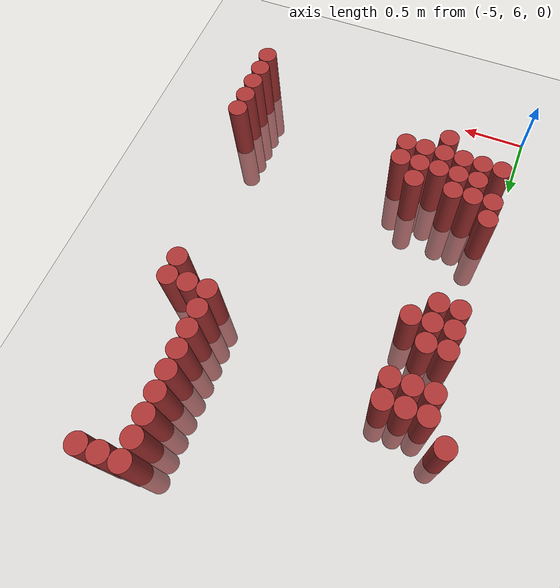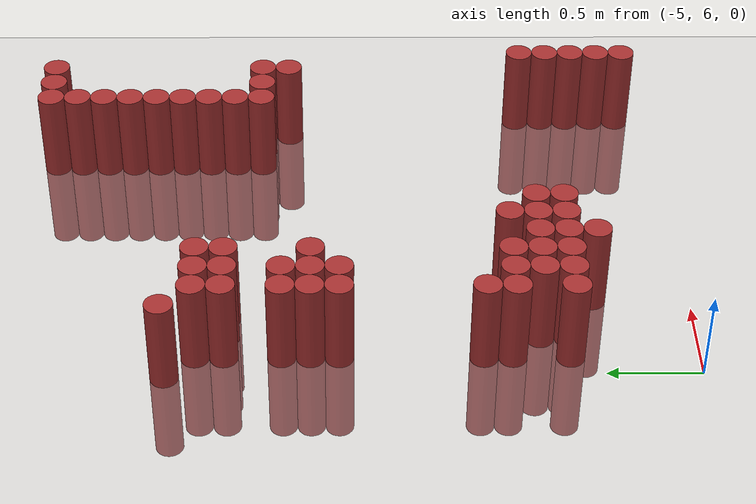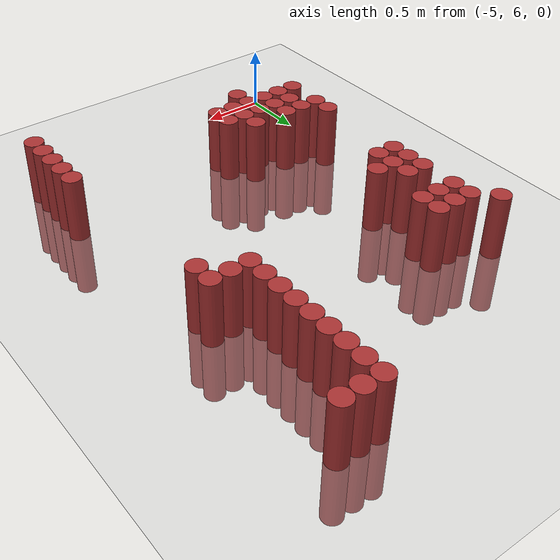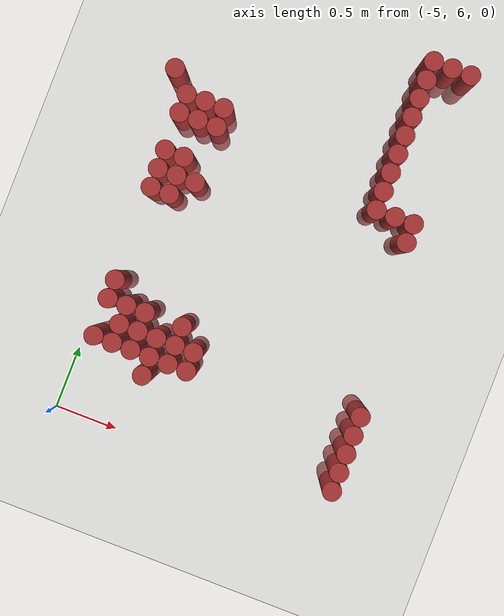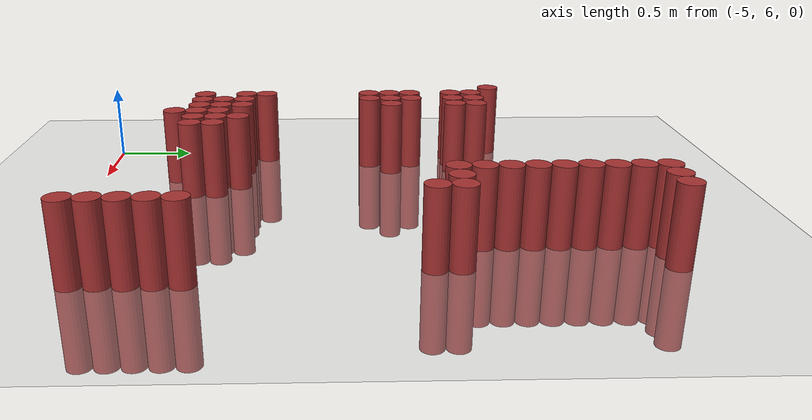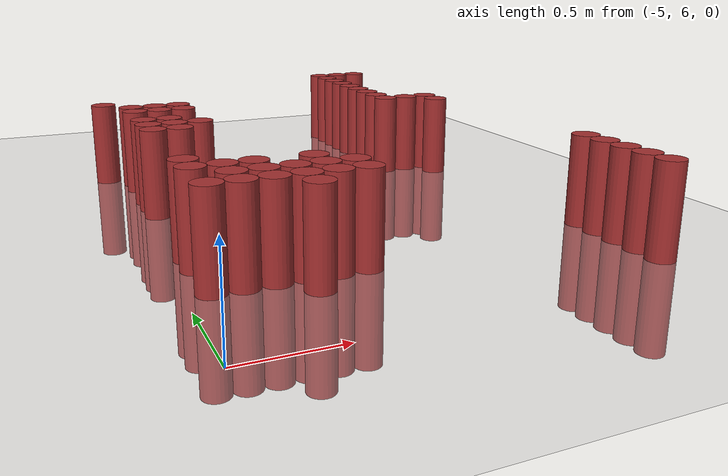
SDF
<sdf version="1.6">
 <world name="default">
  <model name="ground_plane">
   <static>1</static>
   <link name="link">
    <collision name="collision">
     <geometry><plane><normal>0 0 1</normal><size>100 100</size></plane></geometry>
     <surface><friction><ode><mu>100</mu><mu2>50</mu2></ode></friction></surface>
    </collision>
    <visual name="visual">
     <cast_shadows>0</cast_shadows>
     <geometry><plane><normal>0 0 1</normal><size>100 100</size></plane></geometry>
     <material>
      <script><uri>file://media/materials/scripts/gazebo.material</uri><name>Gazebo/Grey</name></script>
     </material>
    </visual>
   </link>
  </model>
  <model name="unit_cylinder_257">
   <static>1</static>
   <pose>-5.025000 8.775000 0.000000 0.000000 0.000000 0.000000</pose>
   <link name="link">
    <inertial>
     <mass>1</mass>
     <inertia><ixx>0.145833</ixx><ixy>0</ixy><ixz>0</ixz><iyy>0.145833</iyy><iyz>0</iyz><izz>0.125</izz></inertia>
    </inertial>
    <collision name="collision">
     <geometry><cylinder><radius>0.075000</radius><length>1</length></cylinder></geometry>
    </collision>
    <visual name="visual">
     <geometry><cylinder><radius>0.075000</radius><length>1</length></cylinder></geometry>
     <material>
      <ambient>0.648000 0.192000 0.192000 1</ambient>
      <diffuse>0.648000 0.192000 0.192000 1</diffuse>
     </material>
     <material>
      <script><name>Gazebo/Grey</name><uri>file://media/materials/scripts/gazebo.material</uri></script>
     </material>
    </visual>
   </link>
  </model>
  <model name="unit_cylinder_261">
   <static>1</static>
   <pose>-4.875000 6.675000 0.000000 0.000000 0.000000 0.000000</pose>
   <link name="link">
    <inertial>
     <mass>1</mass>
     <inertia><ixx>0.145833</ixx><ixy>0</ixy><ixz>0</ixz><iyy>0.145833</iyy><iyz>0</iyz><izz>0.125</izz></inertia>
    </inertial>
    <collision name="collision">
     <geometry><cylinder><radius>0.075000</radius><length>1</length></cylinder></geometry>
    </collision>
    <visual name="visual">
     <geometry><cylinder><radius>0.075000</radius><length>1</length></cylinder></geometry>
     <material>
      <ambient>0.648000 0.192000 0.192000 1</ambient>
      <diffuse>0.648000 0.192000 0.192000 1</diffuse>
     </material>
     <material>
      <script><name>Gazebo/Grey</name><uri>file://media/materials/scripts/gazebo.material</uri></script>
     </material>
    </visual>
   </link>
  </model>
  <model name="unit_cylinder_262">
   <static>1</static>
   <pose>-4.875000 6.975000 0.000000 0.000000 0.000000 0.000000</pose>
   <link name="link">
    <inertial>
     <mass>1</mass>
     <inertia><ixx>0.145833</ixx><ixy>0</ixy><ixz>0</ixz><iyy>0.145833</iyy><iyz>0</iyz><izz>0.125</izz></inertia>
    </inertial>
    <collision name="collision">
     <geometry><cylinder><radius>0.075000</radius><length>1</length></cylinder></geometry>
    </collision>
    <visual name="visual">
     <geometry><cylinder><radius>0.075000</radius><length>1</length></cylinder></geometry>
     <material>
      <ambient>0.648000 0.192000 0.192000 1</ambient>
      <diffuse>0.648000 0.192000 0.192000 1</diffuse>
     </material>
     <material>
      <script><name>Gazebo/Grey</name><uri>file://media/materials/scripts/gazebo.material</uri></script>
     </material>
    </visual>
   </link>
  </model>
  <model name="unit_cylinder_263">
   <static>1</static>
   <pose>-4.875000 7.125000 0.000000 0.000000 0.000000 0.000000</pose>
   <link name="link">
    <inertial>
     <mass>1</mass>
     <inertia><ixx>0.145833</ixx><ixy>0</ixy><ixz>0</ixz><iyy>0.145833</iyy><iyz>0</iyz><izz>0.125</izz></inertia>
    </inertial>
    <collision name="collision">
     <geometry><cylinder><radius>0.075000</radius><length>1</length></cylinder></geometry>
    </collision>
    <visual name="visual">
     <geometry><cylinder><radius>0.075000</radius><length>1</length></cylinder></geometry>
     <material>
      <ambient>0.648000 0.192000 0.192000 1</ambient>
      <diffuse>0.648000 0.192000 0.192000 1</diffuse>
     </material>
     <material>
      <script><name>Gazebo/Grey</name><uri>file://media/materials/scripts/gazebo.material</uri></script>
     </material>
    </visual>
   </link>
  </model>
  <model name="unit_cylinder_264">
   <static>1</static>
   <pose>-4.875000 7.875000 0.000000 0.000000 0.000000 0.000000</pose>
   <link name="link">
    <inertial>
     <mass>1</mass>
     <inertia><ixx>0.145833</ixx><ixy>0</ixy><ixz>0</ixz><iyy>0.145833</iyy><iyz>0</iyz><izz>0.125</izz></inertia>
    </inertial>
    <collision name="collision">
     <geometry><cylinder><radius>0.075000</radius><length>1</length></cylinder></geometry>
    </collision>
    <visual name="visual">
     <geometry><cylinder><radius>0.075000</radius><length>1</length></cylinder></geometry>
     <material>
      <ambient>0.648000 0.192000 0.192000 1</ambient>
      <diffuse>0.648000 0.192000 0.192000 1</diffuse>
     </material>
     <material>
      <script><name>Gazebo/Grey</name><uri>file://media/materials/scripts/gazebo.material</uri></script>
     </material>
    </visual>
   </link>
  </model>
  <model name="unit_cylinder_265">
   <static>1</static>
   <pose>-4.875000 8.025000 0.000000 0.000000 0.000000 0.000000</pose>
   <link name="link">
    <inertial>
     <mass>1</mass>
     <inertia><ixx>0.145833</ixx><ixy>0</ixy><ixz>0</ixz><iyy>0.145833</iyy><iyz>0</iyz><izz>0.125</izz></inertia>
    </inertial>
    <collision name="collision">
     <geometry><cylinder><radius>0.075000</radius><length>1</length></cylinder></geometry>
    </collision>
    <visual name="visual">
     <geometry><cylinder><radius>0.075000</radius><length>1</length></cylinder></geometry>
     <material>
      <ambient>0.648000 0.192000 0.192000 1</ambient>
      <diffuse>0.648000 0.192000 0.192000 1</diffuse>
     </material>
     <material>
      <script><name>Gazebo/Grey</name><uri>file://media/materials/scripts/gazebo.material</uri></script>
     </material>
    </visual>
   </link>
  </model>
  <model name="unit_cylinder_266">
   <static>1</static>
   <pose>-4.875000 8.175000 0.000000 0.000000 0.000000 0.000000</pose>
   <link name="link">
    <inertial>
     <mass>1</mass>
     <inertia><ixx>0.145833</ixx><ixy>0</ixy><ixz>0</ixz><iyy>0.145833</iyy><iyz>0</iyz><izz>0.125</izz></inertia>
    </inertial>
    <collision name="collision">
     <geometry><cylinder><radius>0.075000</radius><length>1</length></cylinder></geometry>
    </collision>
    <visual name="visual">
     <geometry><cylinder><radius>0.075000</radius><length>1</length></cylinder></geometry>
     <material>
      <ambient>0.648000 0.192000 0.192000 1</ambient>
      <diffuse>0.648000 0.192000 0.192000 1</diffuse>
     </material>
     <material>
      <script><name>Gazebo/Grey</name><uri>file://media/materials/scripts/gazebo.material</uri></script>
     </material>
    </visual>
   </link>
  </model>
  <model name="unit_cylinder_267">
   <static>1</static>
   <pose>-4.875000 8.475000 0.000000 0.000000 0.000000 0.000000</pose>
   <link name="link">
    <inertial>
     <mass>1</mass>
     <inertia><ixx>0.145833</ixx><ixy>0</ixy><ixz>0</ixz><iyy>0.145833</iyy><iyz>0</iyz><izz>0.125</izz></inertia>
    </inertial>
    <collision name="collision">
     <geometry><cylinder><radius>0.075000</radius><length>1</length></cylinder></geometry>
    </collision>
    <visual name="visual">
     <geometry><cylinder><radius>0.075000</radius><length>1</length></cylinder></geometry>
     <material>
      <ambient>0.648000 0.192000 0.192000 1</ambient>
      <diffuse>0.648000 0.192000 0.192000 1</diffuse>
     </material>
     <material>
      <script><name>Gazebo/Grey</name><uri>file://media/materials/scripts/gazebo.material</uri></script>
     </material>
    </visual>
   </link>
  </model>
  <model name="unit_cylinder_268">
   <static>1</static>
   <pose>-4.875000 8.625000 0.000000 0.000000 0.000000 0.000000</pose>
   <link name="link">
    <inertial>
     <mass>1</mass>
     <inertia><ixx>0.145833</ixx><ixy>0</ixy><ixz>0</ixz><iyy>0.145833</iyy><iyz>0</iyz><izz>0.125</izz></inertia>
    </inertial>
    <collision name="collision">
     <geometry><cylinder><radius>0.075000</radius><length>1</length></cylinder></geometry>
    </collision>
    <visual name="visual">
     <geometry><cylinder><radius>0.075000</radius><length>1</length></cylinder></geometry>
     <material>
      <ambient>0.648000 0.192000 0.192000 1</ambient>
      <diffuse>0.648000 0.192000 0.192000 1</diffuse>
     </material>
     <material>
      <script><name>Gazebo/Grey</name><uri>file://media/materials/scripts/gazebo.material</uri></script>
     </material>
    </visual>
   </link>
  </model>
  <model name="unit_cylinder_269">
   <static>1</static>
   <pose>-4.725000 6.675000 0.000000 0.000000 0.000000 0.000000</pose>
   <link name="link">
    <inertial>
     <mass>1</mass>
     <inertia><ixx>0.145833</ixx><ixy>0</ixy><ixz>0</ixz><iyy>0.145833</iyy><iyz>0</iyz><izz>0.125</izz></inertia>
    </inertial>
    <collision name="collision">
     <geometry><cylinder><radius>0.075000</radius><length>1</length></cylinder></geometry>
    </collision>
    <visual name="visual">
     <geometry><cylinder><radius>0.075000</radius><length>1</length></cylinder></geometry>
     <material>
      <ambient>0.648000 0.192000 0.192000 1</ambient>
      <diffuse>0.648000 0.192000 0.192000 1</diffuse>
     </material>
     <material>
      <script><name>Gazebo/Grey</name><uri>file://media/materials/scripts/gazebo.material</uri></script>
     </material>
    </visual>
   </link>
  </model>
  <model name="unit_cylinder_270">
   <static>1</static>
   <pose>-4.725000 6.825000 0.000000 0.000000 0.000000 0.000000</pose>
   <link name="link">
    <inertial>
     <mass>1</mass>
     <inertia><ixx>0.145833</ixx><ixy>0</ixy><ixz>0</ixz><iyy>0.145833</iyy><iyz>0</iyz><izz>0.125</izz></inertia>
    </inertial>
    <collision name="collision">
     <geometry><cylinder><radius>0.075000</radius><length>1</length></cylinder></geometry>
    </collision>
    <visual name="visual">
     <geometry><cylinder><radius>0.075000</radius><length>1</length></cylinder></geometry>
     <material>
      <ambient>0.648000 0.192000 0.192000 1</ambient>
      <diffuse>0.648000 0.192000 0.192000 1</diffuse>
     </material>
     <material>
      <script><name>Gazebo/Grey</name><uri>file://media/materials/scripts/gazebo.material</uri></script>
     </material>
    </visual>
   </link>
  </model>
  <model name="unit_cylinder_271">
   <static>1</static>
   <pose>-4.725000 6.975000 0.000000 0.000000 0.000000 0.000000</pose>
   <link name="link">
    <inertial>
     <mass>1</mass>
     <inertia><ixx>0.145833</ixx><ixy>0</ixy><ixz>0</ixz><iyy>0.145833</iyy><iyz>0</iyz><izz>0.125</izz></inertia>
    </inertial>
    <collision name="collision">
     <geometry><cylinder><radius>0.075000</radius><length>1</length></cylinder></geometry>
    </collision>
    <visual name="visual">
     <geometry><cylinder><radius>0.075000</radius><length>1</length></cylinder></geometry>
     <material>
      <ambient>0.648000 0.192000 0.192000 1</ambient>
      <diffuse>0.648000 0.192000 0.192000 1</diffuse>
     </material>
     <material>
      <script><name>Gazebo/Grey</name><uri>file://media/materials/scripts/gazebo.material</uri></script>
     </material>
    </visual>
   </link>
  </model>
  <model name="unit_cylinder_272">
   <static>1</static>
   <pose>-4.725000 7.875000 0.000000 0.000000 0.000000 0.000000</pose>
   <link name="link">
    <inertial>
     <mass>1</mass>
     <inertia><ixx>0.145833</ixx><ixy>0</ixy><ixz>0</ixz><iyy>0.145833</iyy><iyz>0</iyz><izz>0.125</izz></inertia>
    </inertial>
    <collision name="collision">
     <geometry><cylinder><radius>0.075000</radius><length>1</length></cylinder></geometry>
    </collision>
    <visual name="visual">
     <geometry><cylinder><radius>0.075000</radius><length>1</length></cylinder></geometry>
     <material>
      <ambient>0.648000 0.192000 0.192000 1</ambient>
      <diffuse>0.648000 0.192000 0.192000 1</diffuse>
     </material>
     <material>
      <script><name>Gazebo/Grey</name><uri>file://media/materials/scripts/gazebo.material</uri></script>
     </material>
    </visual>
   </link>
  </model>
  <model name="unit_cylinder_273">
   <static>1</static>
   <pose>-4.725000 8.025000 0.000000 0.000000 0.000000 0.000000</pose>
   <link name="link">
    <inertial>
     <mass>1</mass>
     <inertia><ixx>0.145833</ixx><ixy>0</ixy><ixz>0</ixz><iyy>0.145833</iyy><iyz>0</iyz><izz>0.125</izz></inertia>
    </inertial>
    <collision name="collision">
     <geometry><cylinder><radius>0.075000</radius><length>1</length></cylinder></geometry>
    </collision>
    <visual name="visual">
     <geometry><cylinder><radius>0.075000</radius><length>1</length></cylinder></geometry>
     <material>
      <ambient>0.648000 0.192000 0.192000 1</ambient>
      <diffuse>0.648000 0.192000 0.192000 1</diffuse>
     </material>
     <material>
      <script><name>Gazebo/Grey</name><uri>file://media/materials/scripts/gazebo.material</uri></script>
     </material>
    </visual>
   </link>
  </model>
  <model name="unit_cylinder_274">
   <static>1</static>
   <pose>-4.725000 8.175000 0.000000 0.000000 0.000000 0.000000</pose>
   <link name="link">
    <inertial>
     <mass>1</mass>
     <inertia><ixx>0.145833</ixx><ixy>0</ixy><ixz>0</ixz><iyy>0.145833</iyy><iyz>0</iyz><izz>0.125</izz></inertia>
    </inertial>
    <collision name="collision">
     <geometry><cylinder><radius>0.075000</radius><length>1</length></cylinder></geometry>
    </collision>
    <visual name="visual">
     <geometry><cylinder><radius>0.075000</radius><length>1</length></cylinder></geometry>
     <material>
      <ambient>0.648000 0.192000 0.192000 1</ambient>
      <diffuse>0.648000 0.192000 0.192000 1</diffuse>
     </material>
     <material>
      <script><name>Gazebo/Grey</name><uri>file://media/materials/scripts/gazebo.material</uri></script>
     </material>
    </visual>
   </link>
  </model>
  <model name="unit_cylinder_275">
   <static>1</static>
   <pose>-4.725000 8.475000 0.000000 0.000000 0.000000 0.000000</pose>
   <link name="link">
    <inertial>
     <mass>1</mass>
     <inertia><ixx>0.145833</ixx><ixy>0</ixy><ixz>0</ixz><iyy>0.145833</iyy><iyz>0</iyz><izz>0.125</izz></inertia>
    </inertial>
    <collision name="collision">
     <geometry><cylinder><radius>0.075000</radius><length>1</length></cylinder></geometry>
    </collision>
    <visual name="visual">
     <geometry><cylinder><radius>0.075000</radius><length>1</length></cylinder></geometry>
     <material>
      <ambient>0.648000 0.192000 0.192000 1</ambient>
      <diffuse>0.648000 0.192000 0.192000 1</diffuse>
     </material>
     <material>
      <script><name>Gazebo/Grey</name><uri>file://media/materials/scripts/gazebo.material</uri></script>
     </material>
    </visual>
   </link>
  </model>
  <model name="unit_cylinder_276">
   <static>1</static>
   <pose>-4.725000 8.625000 0.000000 0.000000 0.000000 0.000000</pose>
   <link name="link">
    <inertial>
     <mass>1</mass>
     <inertia><ixx>0.145833</ixx><ixy>0</ixy><ixz>0</ixz><iyy>0.145833</iyy><iyz>0</iyz><izz>0.125</izz></inertia>
    </inertial>
    <collision name="collision">
     <geometry><cylinder><radius>0.075000</radius><length>1</length></cylinder></geometry>
    </collision>
    <visual name="visual">
     <geometry><cylinder><radius>0.075000</radius><length>1</length></cylinder></geometry>
     <material>
      <ambient>0.648000 0.192000 0.192000 1</ambient>
      <diffuse>0.648000 0.192000 0.192000 1</diffuse>
     </material>
     <material>
      <script><name>Gazebo/Grey</name><uri>file://media/materials/scripts/gazebo.material</uri></script>
     </material>
    </visual>
   </link>
  </model>
  <model name="unit_cylinder_277">
   <static>1</static>
   <pose>-4.575000 6.675000 0.000000 0.000000 0.000000 0.000000</pose>
   <link name="link">
    <inertial>
     <mass>1</mass>
     <inertia><ixx>0.145833</ixx><ixy>0</ixy><ixz>0</ixz><iyy>0.145833</iyy><iyz>0</iyz><izz>0.125</izz></inertia>
    </inertial>
    <collision name="collision">
     <geometry><cylinder><radius>0.075000</radius><length>1</length></cylinder></geometry>
    </collision>
    <visual name="visual">
     <geometry><cylinder><radius>0.075000</radius><length>1</length></cylinder></geometry>
     <material>
      <ambient>0.648000 0.192000 0.192000 1</ambient>
      <diffuse>0.648000 0.192000 0.192000 1</diffuse>
     </material>
     <material>
      <script><name>Gazebo/Grey</name><uri>file://media/materials/scripts/gazebo.material</uri></script>
     </material>
    </visual>
   </link>
  </model>
  <model name="unit_cylinder_278">
   <static>1</static>
   <pose>-4.575000 6.825000 0.000000 0.000000 0.000000 0.000000</pose>
   <link name="link">
    <inertial>
     <mass>1</mass>
     <inertia><ixx>0.145833</ixx><ixy>0</ixy><ixz>0</ixz><iyy>0.145833</iyy><iyz>0</iyz><izz>0.125</izz></inertia>
    </inertial>
    <collision name="collision">
     <geometry><cylinder><radius>0.075000</radius><length>1</length></cylinder></geometry>
    </collision>
    <visual name="visual">
     <geometry><cylinder><radius>0.075000</radius><length>1</length></cylinder></geometry>
     <material>
      <ambient>0.648000 0.192000 0.192000 1</ambient>
      <diffuse>0.648000 0.192000 0.192000 1</diffuse>
     </material>
     <material>
      <script><name>Gazebo/Grey</name><uri>file://media/materials/scripts/gazebo.material</uri></script>
     </material>
    </visual>
   </link>
  </model>
  <model name="unit_cylinder_279">
   <static>1</static>
   <pose>-4.575000 6.975000 0.000000 0.000000 0.000000 0.000000</pose>
   <link name="link">
    <inertial>
     <mass>1</mass>
     <inertia><ixx>0.145833</ixx><ixy>0</ixy><ixz>0</ixz><iyy>0.145833</iyy><iyz>0</iyz><izz>0.125</izz></inertia>
    </inertial>
    <collision name="collision">
     <geometry><cylinder><radius>0.075000</radius><length>1</length></cylinder></geometry>
    </collision>
    <visual name="visual">
     <geometry><cylinder><radius>0.075000</radius><length>1</length></cylinder></geometry>
     <material>
      <ambient>0.648000 0.192000 0.192000 1</ambient>
      <diffuse>0.648000 0.192000 0.192000 1</diffuse>
     </material>
     <material>
      <script><name>Gazebo/Grey</name><uri>file://media/materials/scripts/gazebo.material</uri></script>
     </material>
    </visual>
   </link>
  </model>
  <model name="unit_cylinder_280">
   <static>1</static>
   <pose>-4.575000 8.025000 0.000000 0.000000 0.000000 0.000000</pose>
   <link name="link">
    <inertial>
     <mass>1</mass>
     <inertia><ixx>0.145833</ixx><ixy>0</ixy><ixz>0</ixz><iyy>0.145833</iyy><iyz>0</iyz><izz>0.125</izz></inertia>
    </inertial>
    <collision name="collision">
     <geometry><cylinder><radius>0.075000</radius><length>1</length></cylinder></geometry>
    </collision>
    <visual name="visual">
     <geometry><cylinder><radius>0.075000</radius><length>1</length></cylinder></geometry>
     <material>
      <ambient>0.648000 0.192000 0.192000 1</ambient>
      <diffuse>0.648000 0.192000 0.192000 1</diffuse>
     </material>
     <material>
      <script><name>Gazebo/Grey</name><uri>file://media/materials/scripts/gazebo.material</uri></script>
     </material>
    </visual>
   </link>
  </model>
  <model name="unit_cylinder_281">
   <static>1</static>
   <pose>-4.575000 8.475000 0.000000 0.000000 0.000000 0.000000</pose>
   <link name="link">
    <inertial>
     <mass>1</mass>
     <inertia><ixx>0.145833</ixx><ixy>0</ixy><ixz>0</ixz><iyy>0.145833</iyy><iyz>0</iyz><izz>0.125</izz></inertia>
    </inertial>
    <collision name="collision">
     <geometry><cylinder><radius>0.075000</radius><length>1</length></cylinder></geometry>
    </collision>
    <visual name="visual">
     <geometry><cylinder><radius>0.075000</radius><length>1</length></cylinder></geometry>
     <material>
      <ambient>0.648000 0.192000 0.192000 1</ambient>
      <diffuse>0.648000 0.192000 0.192000 1</diffuse>
     </material>
     <material>
      <script><name>Gazebo/Grey</name><uri>file://media/materials/scripts/gazebo.material</uri></script>
     </material>
    </visual>
   </link>
  </model>
  <model name="unit_cylinder_282">
   <static>1</static>
   <pose>-4.575000 8.625000 0.000000 0.000000 0.000000 0.000000</pose>
   <link name="link">
    <inertial>
     <mass>1</mass>
     <inertia><ixx>0.145833</ixx><ixy>0</ixy><ixz>0</ixz><iyy>0.145833</iyy><iyz>0</iyz><izz>0.125</izz></inertia>
    </inertial>
    <collision name="collision">
     <geometry><cylinder><radius>0.075000</radius><length>1</length></cylinder></geometry>
    </collision>
    <visual name="visual">
     <geometry><cylinder><radius>0.075000</radius><length>1</length></cylinder></geometry>
     <material>
      <ambient>0.648000 0.192000 0.192000 1</ambient>
      <diffuse>0.648000 0.192000 0.192000 1</diffuse>
     </material>
     <material>
      <script><name>Gazebo/Grey</name><uri>file://media/materials/scripts/gazebo.material</uri></script>
     </material>
    </visual>
   </link>
  </model>
  <model name="unit_cylinder_283">
   <static>1</static>
   <pose>-4.425000 6.525000 0.000000 0.000000 0.000000 0.000000</pose>
   <link name="link">
    <inertial>
     <mass>1</mass>
     <inertia><ixx>0.145833</ixx><ixy>0</ixy><ixz>0</ixz><iyy>0.145833</iyy><iyz>0</iyz><izz>0.125</izz></inertia>
    </inertial>
    <collision name="collision">
     <geometry><cylinder><radius>0.075000</radius><length>1</length></cylinder></geometry>
    </collision>
    <visual name="visual">
     <geometry><cylinder><radius>0.075000</radius><length>1</length></cylinder></geometry>
     <material>
      <ambient>0.648000 0.192000 0.192000 1</ambient>
      <diffuse>0.648000 0.192000 0.192000 1</diffuse>
     </material>
     <material>
      <script><name>Gazebo/Grey</name><uri>file://media/materials/scripts/gazebo.material</uri></script>
     </material>
    </visual>
   </link>
  </model>
  <model name="unit_cylinder_284">
   <static>1</static>
   <pose>-4.425000 6.675000 0.000000 0.000000 0.000000 0.000000</pose>
   <link name="link">
    <inertial>
     <mass>1</mass>
     <inertia><ixx>0.145833</ixx><ixy>0</ixy><ixz>0</ixz><iyy>0.145833</iyy><iyz>0</iyz><izz>0.125</izz></inertia>
    </inertial>
    <collision name="collision">
     <geometry><cylinder><radius>0.075000</radius><length>1</length></cylinder></geometry>
    </collision>
    <visual name="visual">
     <geometry><cylinder><radius>0.075000</radius><length>1</length></cylinder></geometry>
     <material>
      <ambient>0.648000 0.192000 0.192000 1</ambient>
      <diffuse>0.648000 0.192000 0.192000 1</diffuse>
     </material>
     <material>
      <script><name>Gazebo/Grey</name><uri>file://media/materials/scripts/gazebo.material</uri></script>
     </material>
    </visual>
   </link>
  </model>
  <model name="unit_cylinder_285">
   <static>1</static>
   <pose>-4.425000 6.825000 0.000000 0.000000 0.000000 0.000000</pose>
   <link name="link">
    <inertial>
     <mass>1</mass>
     <inertia><ixx>0.145833</ixx><ixy>0</ixy><ixz>0</ixz><iyy>0.145833</iyy><iyz>0</iyz><izz>0.125</izz></inertia>
    </inertial>
    <collision name="collision">
     <geometry><cylinder><radius>0.075000</radius><length>1</length></cylinder></geometry>
    </collision>
    <visual name="visual">
     <geometry><cylinder><radius>0.075000</radius><length>1</length></cylinder></geometry>
     <material>
      <ambient>0.648000 0.192000 0.192000 1</ambient>
      <diffuse>0.648000 0.192000 0.192000 1</diffuse>
     </material>
     <material>
      <script><name>Gazebo/Grey</name><uri>file://media/materials/scripts/gazebo.material</uri></script>
     </material>
    </visual>
   </link>
  </model>
  <model name="unit_cylinder_286">
   <static>1</static>
   <pose>-4.275000 6.675000 0.000000 0.000000 0.000000 0.000000</pose>
   <link name="link">
    <inertial>
     <mass>1</mass>
     <inertia><ixx>0.145833</ixx><ixy>0</ixy><ixz>0</ixz><iyy>0.145833</iyy><iyz>0</iyz><izz>0.125</izz></inertia>
    </inertial>
    <collision name="collision">
     <geometry><cylinder><radius>0.075000</radius><length>1</length></cylinder></geometry>
    </collision>
    <visual name="visual">
     <geometry><cylinder><radius>0.075000</radius><length>1</length></cylinder></geometry>
     <material>
      <ambient>0.648000 0.192000 0.192000 1</ambient>
      <diffuse>0.648000 0.192000 0.192000 1</diffuse>
     </material>
     <material>
      <script><name>Gazebo/Grey</name><uri>file://media/materials/scripts/gazebo.material</uri></script>
     </material>
    </visual>
   </link>
  </model>
  <model name="unit_cylinder_287">
   <static>1</static>
   <pose>-4.275000 6.825000 0.000000 0.000000 0.000000 0.000000</pose>
   <link name="link">
    <inertial>
     <mass>1</mass>
     <inertia><ixx>0.145833</ixx><ixy>0</ixy><ixz>0</ixz><iyy>0.145833</iyy><iyz>0</iyz><izz>0.125</izz></inertia>
    </inertial>
    <collision name="collision">
     <geometry><cylinder><radius>0.075000</radius><length>1</length></cylinder></geometry>
    </collision>
    <visual name="visual">
     <geometry><cylinder><radius>0.075000</radius><length>1</length></cylinder></geometry>
     <material>
      <ambient>0.648000 0.192000 0.192000 1</ambient>
      <diffuse>0.648000 0.192000 0.192000 1</diffuse>
     </material>
     <material>
      <script><name>Gazebo/Grey</name><uri>file://media/materials/scripts/gazebo.material</uri></script>
     </material>
    </visual>
   </link>
  </model>
  <model name="unit_cylinder_288">
   <static>1</static>
   <pose>-4.275000 6.975000 0.000000 0.000000 0.000000 0.000000</pose>
   <link name="link">
    <inertial>
     <mass>1</mass>
     <inertia><ixx>0.145833</ixx><ixy>0</ixy><ixz>0</ixz><iyy>0.145833</iyy><iyz>0</iyz><izz>0.125</izz></inertia>
    </inertial>
    <collision name="collision">
     <geometry><cylinder><radius>0.075000</radius><length>1</length></cylinder></geometry>
    </collision>
    <visual name="visual">
     <geometry><cylinder><radius>0.075000</radius><length>1</length></cylinder></geometry>
     <material>
      <ambient>0.648000 0.192000 0.192000 1</ambient>
      <diffuse>0.648000 0.192000 0.192000 1</diffuse>
     </material>
     <material>
      <script><name>Gazebo/Grey</name><uri>file://media/materials/scripts/gazebo.material</uri></script>
     </material>
    </visual>
   </link>
  </model>
  <model name="unit_cylinder_289">
   <static>1</static>
   <pose>-4.125000 6.675000 0.000000 0.000000 0.000000 0.000000</pose>
   <link name="link">
    <inertial>
     <mass>1</mass>
     <inertia><ixx>0.145833</ixx><ixy>0</ixy><ixz>0</ixz><iyy>0.145833</iyy><iyz>0</iyz><izz>0.125</izz></inertia>
    </inertial>
    <collision name="collision">
     <geometry><cylinder><radius>0.075000</radius><length>1</length></cylinder></geometry>
    </collision>
    <visual name="visual">
     <geometry><cylinder><radius>0.075000</radius><length>1</length></cylinder></geometry>
     <material>
      <ambient>0.648000 0.192000 0.192000 1</ambient>
      <diffuse>0.648000 0.192000 0.192000 1</diffuse>
     </material>
     <material>
      <script><name>Gazebo/Grey</name><uri>file://media/materials/scripts/gazebo.material</uri></script>
     </material>
    </visual>
   </link>
  </model>
  <model name="unit_cylinder_290">
   <static>1</static>
   <pose>-4.125000 6.825000 0.000000 0.000000 0.000000 0.000000</pose>
   <link name="link">
    <inertial>
     <mass>1</mass>
     <inertia><ixx>0.145833</ixx><ixy>0</ixy><ixz>0</ixz><iyy>0.145833</iyy><iyz>0</iyz><izz>0.125</izz></inertia>
    </inertial>
    <collision name="collision">
     <geometry><cylinder><radius>0.075000</radius><length>1</length></cylinder></geometry>
    </collision>
    <visual name="visual">
     <geometry><cylinder><radius>0.075000</radius><length>1</length></cylinder></geometry>
     <material>
      <ambient>0.648000 0.192000 0.192000 1</ambient>
      <diffuse>0.648000 0.192000 0.192000 1</diffuse>
     </material>
     <material>
      <script><name>Gazebo/Grey</name><uri>file://media/materials/scripts/gazebo.material</uri></script>
     </material>
    </visual>
   </link>
  </model>
  <model name="unit_cylinder_294">
   <static>1</static>
   <pose>-3.225000 8.325000 0.000000 0.000000 0.000000 0.000000</pose>
   <link name="link">
    <inertial>
     <mass>1</mass>
     <inertia><ixx>0.145833</ixx><ixy>0</ixy><ixz>0</ixz><iyy>0.145833</iyy><iyz>0</iyz><izz>0.125</izz></inertia>
    </inertial>
    <collision name="collision">
     <geometry><cylinder><radius>0.075000</radius><length>1</length></cylinder></geometry>
    </collision>
    <visual name="visual">
     <geometry><cylinder><radius>0.075000</radius><length>1</length></cylinder></geometry>
     <material>
      <ambient>0.648000 0.192000 0.192000 1</ambient>
      <diffuse>0.648000 0.192000 0.192000 1</diffuse>
     </material>
     <material>
      <script><name>Gazebo/Grey</name><uri>file://media/materials/scripts/gazebo.material</uri></script>
     </material>
    </visual>
   </link>
  </model>
  <model name="unit_cylinder_295">
   <static>1</static>
   <pose>-3.225000 8.475000 0.000000 0.000000 0.000000 0.000000</pose>
   <link name="link">
    <inertial>
     <mass>1</mass>
     <inertia><ixx>0.145833</ixx><ixy>0</ixy><ixz>0</ixz><iyy>0.145833</iyy><iyz>0</iyz><izz>0.125</izz></inertia>
    </inertial>
    <collision name="collision">
     <geometry><cylinder><radius>0.075000</radius><length>1</length></cylinder></geometry>
    </collision>
    <visual name="visual">
     <geometry><cylinder><radius>0.075000</radius><length>1</length></cylinder></geometry>
     <material>
      <ambient>0.648000 0.192000 0.192000 1</ambient>
      <diffuse>0.648000 0.192000 0.192000 1</diffuse>
     </material>
     <material>
      <script><name>Gazebo/Grey</name><uri>file://media/materials/scripts/gazebo.material</uri></script>
     </material>
    </visual>
   </link>
  </model>
  <model name="unit_cylinder_296">
   <static>1</static>
   <pose>-3.225000 8.625000 0.000000 0.000000 0.000000 0.000000</pose>
   <link name="link">
    <inertial>
     <mass>1</mass>
     <inertia><ixx>0.145833</ixx><ixy>0</ixy><ixz>0</ixz><iyy>0.145833</iyy><iyz>0</iyz><izz>0.125</izz></inertia>
    </inertial>
    <collision name="collision">
     <geometry><cylinder><radius>0.075000</radius><length>1</length></cylinder></geometry>
    </collision>
    <visual name="visual">
     <geometry><cylinder><radius>0.075000</radius><length>1</length></cylinder></geometry>
     <material>
      <ambient>0.648000 0.192000 0.192000 1</ambient>
      <diffuse>0.648000 0.192000 0.192000 1</diffuse>
     </material>
     <material>
      <script><name>Gazebo/Grey</name><uri>file://media/materials/scripts/gazebo.material</uri></script>
     </material>
    </visual>
   </link>
  </model>
  <model name="unit_cylinder_297">
   <static>1</static>
   <pose>-3.225000 8.775000 0.000000 0.000000 0.000000 0.000000</pose>
   <link name="link">
    <inertial>
     <mass>1</mass>
     <inertia><ixx>0.145833</ixx><ixy>0</ixy><ixz>0</ixz><iyy>0.145833</iyy><iyz>0</iyz><izz>0.125</izz></inertia>
    </inertial>
    <collision name="collision">
     <geometry><cylinder><radius>0.075000</radius><length>1</length></cylinder></geometry>
    </collision>
    <visual name="visual">
     <geometry><cylinder><radius>0.075000</radius><length>1</length></cylinder></geometry>
     <material>
      <ambient>0.648000 0.192000 0.192000 1</ambient>
      <diffuse>0.648000 0.192000 0.192000 1</diffuse>
     </material>
     <material>
      <script><name>Gazebo/Grey</name><uri>file://media/materials/scripts/gazebo.material</uri></script>
     </material>
    </visual>
   </link>
  </model>
  <model name="unit_cylinder_298">
   <static>1</static>
   <pose>-3.225000 8.925000 0.000000 0.000000 0.000000 0.000000</pose>
   <link name="link">
    <inertial>
     <mass>1</mass>
     <inertia><ixx>0.145833</ixx><ixy>0</ixy><ixz>0</ixz><iyy>0.145833</iyy><iyz>0</iyz><izz>0.125</izz></inertia>
    </inertial>
    <collision name="collision">
     <geometry><cylinder><radius>0.075000</radius><length>1</length></cylinder></geometry>
    </collision>
    <visual name="visual">
     <geometry><cylinder><radius>0.075000</radius><length>1</length></cylinder></geometry>
     <material>
      <ambient>0.648000 0.192000 0.192000 1</ambient>
      <diffuse>0.648000 0.192000 0.192000 1</diffuse>
     </material>
     <material>
      <script><name>Gazebo/Grey</name><uri>file://media/materials/scripts/gazebo.material</uri></script>
     </material>
    </visual>
   </link>
  </model>
  <model name="unit_cylinder_299">
   <static>1</static>
   <pose>-3.225000 9.075000 0.000000 0.000000 0.000000 0.000000</pose>
   <link name="link">
    <inertial>
     <mass>1</mass>
     <inertia><ixx>0.145833</ixx><ixy>0</ixy><ixz>0</ixz><iyy>0.145833</iyy><iyz>0</iyz><izz>0.125</izz></inertia>
    </inertial>
    <collision name="collision">
     <geometry><cylinder><radius>0.075000</radius><length>1</length></cylinder></geometry>
    </collision>
    <visual name="visual">
     <geometry><cylinder><radius>0.075000</radius><length>1</length></cylinder></geometry>
     <material>
      <ambient>0.648000 0.192000 0.192000 1</ambient>
      <diffuse>0.648000 0.192000 0.192000 1</diffuse>
     </material>
     <material>
      <script><name>Gazebo/Grey</name><uri>file://media/materials/scripts/gazebo.material</uri></script>
     </material>
    </visual>
   </link>
  </model>
  <model name="unit_cylinder_300">
   <static>1</static>
   <pose>-3.225000 9.225000 0.000000 0.000000 0.000000 0.000000</pose>
   <link name="link">
    <inertial>
     <mass>1</mass>
     <inertia><ixx>0.145833</ixx><ixy>0</ixy><ixz>0</ixz><iyy>0.145833</iyy><iyz>0</iyz><izz>0.125</izz></inertia>
    </inertial>
    <collision name="collision">
     <geometry><cylinder><radius>0.075000</radius><length>1</length></cylinder></geometry>
    </collision>
    <visual name="visual">
     <geometry><cylinder><radius>0.075000</radius><length>1</length></cylinder></geometry>
     <material>
      <ambient>0.648000 0.192000 0.192000 1</ambient>
      <diffuse>0.648000 0.192000 0.192000 1</diffuse>
     </material>
     <material>
      <script><name>Gazebo/Grey</name><uri>file://media/materials/scripts/gazebo.material</uri></script>
     </material>
    </visual>
   </link>
  </model>
  <model name="unit_cylinder_301">
   <static>1</static>
   <pose>-3.225000 9.375000 0.000000 0.000000 0.000000 0.000000</pose>
   <link name="link">
    <inertial>
     <mass>1</mass>
     <inertia><ixx>0.145833</ixx><ixy>0</ixy><ixz>0</ixz><iyy>0.145833</iyy><iyz>0</iyz><izz>0.125</izz></inertia>
    </inertial>
    <collision name="collision">
     <geometry><cylinder><radius>0.075000</radius><length>1</length></cylinder></geometry>
    </collision>
    <visual name="visual">
     <geometry><cylinder><radius>0.075000</radius><length>1</length></cylinder></geometry>
     <material>
      <ambient>0.648000 0.192000 0.192000 1</ambient>
      <diffuse>0.648000 0.192000 0.192000 1</diffuse>
     </material>
     <material>
      <script><name>Gazebo/Grey</name><uri>file://media/materials/scripts/gazebo.material</uri></script>
     </material>
    </visual>
   </link>
  </model>
  <model name="unit_cylinder_302">
   <static>1</static>
   <pose>-3.225000 9.525000 0.000000 0.000000 0.000000 0.000000</pose>
   <link name="link">
    <inertial>
     <mass>1</mass>
     <inertia><ixx>0.145833</ixx><ixy>0</ixy><ixz>0</ixz><iyy>0.145833</iyy><iyz>0</iyz><izz>0.125</izz></inertia>
    </inertial>
    <collision name="collision">
     <geometry><cylinder><radius>0.075000</radius><length>1</length></cylinder></geometry>
    </collision>
    <visual name="visual">
     <geometry><cylinder><radius>0.075000</radius><length>1</length></cylinder></geometry>
     <material>
      <ambient>0.648000 0.192000 0.192000 1</ambient>
      <diffuse>0.648000 0.192000 0.192000 1</diffuse>
     </material>
     <material>
      <script><name>Gazebo/Grey</name><uri>file://media/materials/scripts/gazebo.material</uri></script>
     </material>
    </visual>
   </link>
  </model>
  <model name="unit_cylinder_305">
   <static>1</static>
   <pose>-3.075000 8.325000 0.000000 0.000000 0.000000 0.000000</pose>
   <link name="link">
    <inertial>
     <mass>1</mass>
     <inertia><ixx>0.145833</ixx><ixy>0</ixy><ixz>0</ixz><iyy>0.145833</iyy><iyz>0</iyz><izz>0.125</izz></inertia>
    </inertial>
    <collision name="collision">
     <geometry><cylinder><radius>0.075000</radius><length>1</length></cylinder></geometry>
    </collision>
    <visual name="visual">
     <geometry><cylinder><radius>0.075000</radius><length>1</length></cylinder></geometry>
     <material>
      <ambient>0.648000 0.192000 0.192000 1</ambient>
      <diffuse>0.648000 0.192000 0.192000 1</diffuse>
     </material>
     <material>
      <script><name>Gazebo/Grey</name><uri>file://media/materials/scripts/gazebo.material</uri></script>
     </material>
    </visual>
   </link>
  </model>
  <model name="unit_cylinder_306">
   <static>1</static>
   <pose>-3.075000 9.525000 0.000000 0.000000 0.000000 0.000000</pose>
   <link name="link">
    <inertial>
     <mass>1</mass>
     <inertia><ixx>0.145833</ixx><ixy>0</ixy><ixz>0</ixz><iyy>0.145833</iyy><iyz>0</iyz><izz>0.125</izz></inertia>
    </inertial>
    <collision name="collision">
     <geometry><cylinder><radius>0.075000</radius><length>1</length></cylinder></geometry>
    </collision>
    <visual name="visual">
     <geometry><cylinder><radius>0.075000</radius><length>1</length></cylinder></geometry>
     <material>
      <ambient>0.648000 0.192000 0.192000 1</ambient>
      <diffuse>0.648000 0.192000 0.192000 1</diffuse>
     </material>
     <material>
      <script><name>Gazebo/Grey</name><uri>file://media/materials/scripts/gazebo.material</uri></script>
     </material>
    </visual>
   </link>
  </model>
  <model name="unit_cylinder_309">
   <static>1</static>
   <pose>-2.925000 8.175000 0.000000 0.000000 0.000000 0.000000</pose>
   <link name="link">
    <inertial>
     <mass>1</mass>
     <inertia><ixx>0.145833</ixx><ixy>0</ixy><ixz>0</ixz><iyy>0.145833</iyy><iyz>0</iyz><izz>0.125</izz></inertia>
    </inertial>
    <collision name="collision">
     <geometry><cylinder><radius>0.075000</radius><length>1</length></cylinder></geometry>
    </collision>
    <visual name="visual">
     <geometry><cylinder><radius>0.075000</radius><length>1</length></cylinder></geometry>
     <material>
      <ambient>0.648000 0.192000 0.192000 1</ambient>
      <diffuse>0.648000 0.192000 0.192000 1</diffuse>
     </material>
     <material>
      <script><name>Gazebo/Grey</name><uri>file://media/materials/scripts/gazebo.material</uri></script>
     </material>
    </visual>
   </link>
  </model>
  <model name="unit_cylinder_310">
   <static>1</static>
   <pose>-2.925000 8.325000 0.000000 0.000000 0.000000 0.000000</pose>
   <link name="link">
    <inertial>
     <mass>1</mass>
     <inertia><ixx>0.145833</ixx><ixy>0</ixy><ixz>0</ixz><iyy>0.145833</iyy><iyz>0</iyz><izz>0.125</izz></inertia>
    </inertial>
    <collision name="collision">
     <geometry><cylinder><radius>0.075000</radius><length>1</length></cylinder></geometry>
    </collision>
    <visual name="visual">
     <geometry><cylinder><radius>0.075000</radius><length>1</length></cylinder></geometry>
     <material>
      <ambient>0.648000 0.192000 0.192000 1</ambient>
      <diffuse>0.648000 0.192000 0.192000 1</diffuse>
     </material>
     <material>
      <script><name>Gazebo/Grey</name><uri>file://media/materials/scripts/gazebo.material</uri></script>
     </material>
    </visual>
   </link>
  </model>
  <model name="unit_cylinder_311">
   <static>1</static>
   <pose>-2.925000 9.525000 0.000000 0.000000 0.000000 0.000000</pose>
   <link name="link">
    <inertial>
     <mass>1</mass>
     <inertia><ixx>0.145833</ixx><ixy>0</ixy><ixz>0</ixz><iyy>0.145833</iyy><iyz>0</iyz><izz>0.125</izz></inertia>
    </inertial>
    <collision name="collision">
     <geometry><cylinder><radius>0.075000</radius><length>1</length></cylinder></geometry>
    </collision>
    <visual name="visual">
     <geometry><cylinder><radius>0.075000</radius><length>1</length></cylinder></geometry>
     <material>
      <ambient>0.648000 0.192000 0.192000 1</ambient>
      <diffuse>0.648000 0.192000 0.192000 1</diffuse>
     </material>
     <material>
      <script><name>Gazebo/Grey</name><uri>file://media/materials/scripts/gazebo.material</uri></script>
     </material>
    </visual>
   </link>
  </model>
  <model name="unit_cylinder_319">
   <static>1</static>
   <pose>-2.775000 6.225000 0.000000 0.000000 0.000000 0.000000</pose>
   <link name="link">
    <inertial>
     <mass>1</mass>
     <inertia><ixx>0.145833</ixx><ixy>0</ixy><ixz>0</ixz><iyy>0.145833</iyy><iyz>0</iyz><izz>0.125</izz></inertia>
    </inertial>
    <collision name="collision">
     <geometry><cylinder><radius>0.075000</radius><length>1</length></cylinder></geometry>
    </collision>
    <visual name="visual">
     <geometry><cylinder><radius>0.075000</radius><length>1</length></cylinder></geometry>
     <material>
      <ambient>0.648000 0.192000 0.192000 1</ambient>
      <diffuse>0.648000 0.192000 0.192000 1</diffuse>
     </material>
     <material>
      <script><name>Gazebo/Grey</name><uri>file://media/materials/scripts/gazebo.material</uri></script>
     </material>
    </visual>
   </link>
  </model>
  <model name="unit_cylinder_320">
   <static>1</static>
   <pose>-2.775000 6.375000 0.000000 0.000000 0.000000 0.000000</pose>
   <link name="link">
    <inertial>
     <mass>1</mass>
     <inertia><ixx>0.145833</ixx><ixy>0</ixy><ixz>0</ixz><iyy>0.145833</iyy><iyz>0</iyz><izz>0.125</izz></inertia>
    </inertial>
    <collision name="collision">
     <geometry><cylinder><radius>0.075000</radius><length>1</length></cylinder></geometry>
    </collision>
    <visual name="visual">
     <geometry><cylinder><radius>0.075000</radius><length>1</length></cylinder></geometry>
     <material>
      <ambient>0.648000 0.192000 0.192000 1</ambient>
      <diffuse>0.648000 0.192000 0.192000 1</diffuse>
     </material>
     <material>
      <script><name>Gazebo/Grey</name><uri>file://media/materials/scripts/gazebo.material</uri></script>
     </material>
    </visual>
   </link>
  </model>
  <model name="unit_cylinder_321">
   <static>1</static>
   <pose>-2.775000 6.525000 0.000000 0.000000 0.000000 0.000000</pose>
   <link name="link">
    <inertial>
     <mass>1</mass>
     <inertia><ixx>0.145833</ixx><ixy>0</ixy><ixz>0</ixz><iyy>0.145833</iyy><iyz>0</iyz><izz>0.125</izz></inertia>
    </inertial>
    <collision name="collision">
     <geometry><cylinder><radius>0.075000</radius><length>1</length></cylinder></geometry>
    </collision>
    <visual name="visual">
     <geometry><cylinder><radius>0.075000</radius><length>1</length></cylinder></geometry>
     <material>
      <ambient>0.648000 0.192000 0.192000 1</ambient>
      <diffuse>0.648000 0.192000 0.192000 1</diffuse>
     </material>
     <material>
      <script><name>Gazebo/Grey</name><uri>file://media/materials/scripts/gazebo.material</uri></script>
     </material>
    </visual>
   </link>
  </model>
  <model name="unit_cylinder_322">
   <static>1</static>
   <pose>-2.775000 6.675000 0.000000 0.000000 0.000000 0.000000</pose>
   <link name="link">
    <inertial>
     <mass>1</mass>
     <inertia><ixx>0.145833</ixx><ixy>0</ixy><ixz>0</ixz><iyy>0.145833</iyy><iyz>0</iyz><izz>0.125</izz></inertia>
    </inertial>
    <collision name="collision">
     <geometry><cylinder><radius>0.075000</radius><length>1</length></cylinder></geometry>
    </collision>
    <visual name="visual">
     <geometry><cylinder><radius>0.075000</radius><length>1</length></cylinder></geometry>
     <material>
      <ambient>0.648000 0.192000 0.192000 1</ambient>
      <diffuse>0.648000 0.192000 0.192000 1</diffuse>
     </material>
     <material>
      <script><name>Gazebo/Grey</name><uri>file://media/materials/scripts/gazebo.material</uri></script>
     </material>
    </visual>
   </link>
  </model>
  <model name="unit_cylinder_323">
   <static>1</static>
   <pose>-2.775000 6.825000 0.000000 0.000000 0.000000 0.000000</pose>
   <link name="link">
    <inertial>
     <mass>1</mass>
     <inertia><ixx>0.145833</ixx><ixy>0</ixy><ixz>0</ixz><iyy>0.145833</iyy><iyz>0</iyz><izz>0.125</izz></inertia>
    </inertial>
    <collision name="collision">
     <geometry><cylinder><radius>0.075000</radius><length>1</length></cylinder></geometry>
    </collision>
    <visual name="visual">
     <geometry><cylinder><radius>0.075000</radius><length>1</length></cylinder></geometry>
     <material>
      <ambient>0.648000 0.192000 0.192000 1</ambient>
      <diffuse>0.648000 0.192000 0.192000 1</diffuse>
     </material>
     <material>
      <script><name>Gazebo/Grey</name><uri>file://media/materials/scripts/gazebo.material</uri></script>
     </material>
    </visual>
   </link>
  </model>
 </world>
</sdf>
